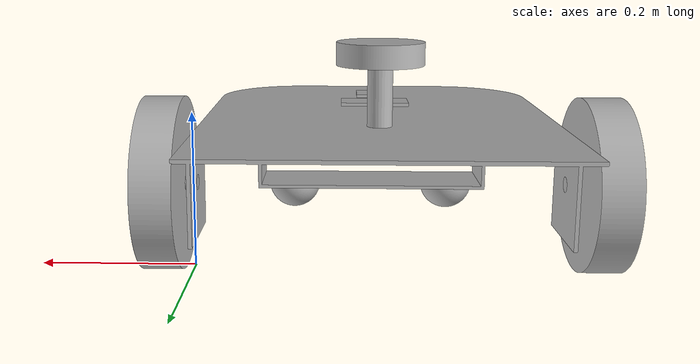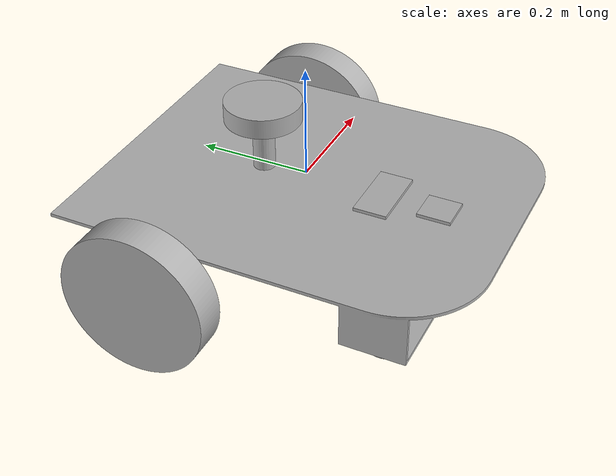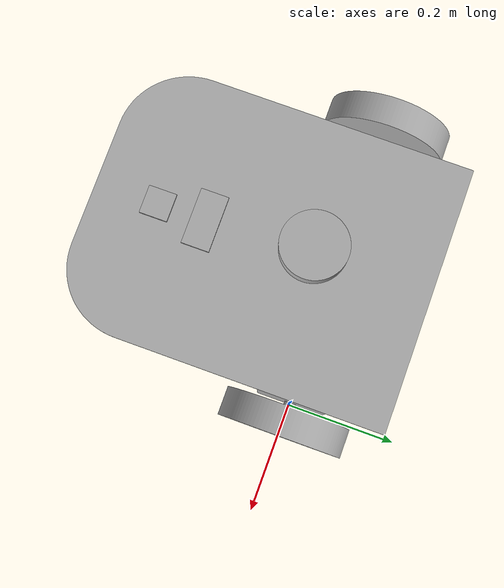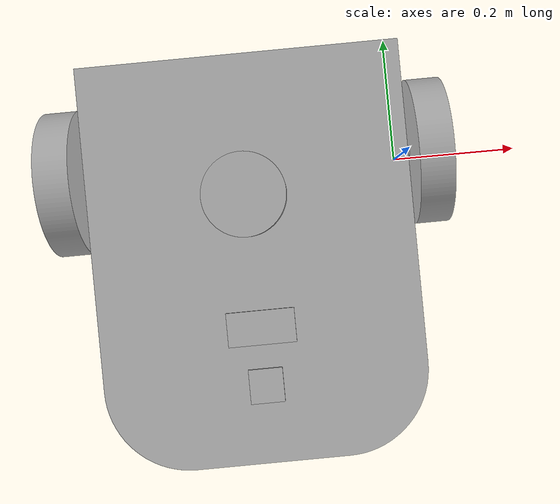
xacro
<?xml version="1.0" ?>
<robot name="eric_bot" xmlns:xacro="http://www.ros.org/wiki/xacro">

<xacro:include filename="$(find eric_bot_description)/urdf/materials.xacro" />
<xacro:include filename="$(find eric_bot_description)/urdf/eric_bot.trans" />
<xacro:include filename="$(find eric_bot_description)/urdf/eric_bot.gazebo" />
<link name="base_link">
  <inertial>
    <origin xyz="-0.23713528803949824 -0.13426975337040928 0.15351805277851321" rpy="0 0 0"/>
    <mass value="5.5523268218185935"/>
    <inertia ixx="0.159006" iyy="0.128806" izz="0.266255" ixy="0.000336" iyz="-0.010472" ixz="0.00017"/>
  </inertial>
  <visual>
    <origin xyz="0 0 0" rpy="0 0 0"/>
    <geometry>
      <mesh filename="file://$(find eric_bot_description)/meshes/base_link.stl" scale="0.001 0.001 0.001"/>
    </geometry>
    <material name="silver"/>
  </visual>
  <collision>
    <origin xyz="0 0 0" rpy="0 0 0"/>
    <geometry>
      <mesh filename="file://$(find eric_bot_description)/meshes/base_link.stl" scale="0.001 0.001 0.001"/>
    </geometry>
  </collision>
</link>

<link name="lidar_1">
  <inertial>
    <origin xyz="0.0 -3.045630598899618e-07 0.015000000000000013" rpy="0 0 0"/>
    <mass value="0.39442724222286785"/>
    <inertia ixx="0.000349" iyy="0.000349" izz="0.00064" ixy="0.0" iyz="-0.0" ixz="-0.0"/>
  </inertial>
  <visual>
    <origin xyz="0.2375 0.049335 -0.255" rpy="0 0 0"/>
    <geometry>
      <mesh filename="file://$(find eric_bot_description)/meshes/lidar_1.stl" scale="0.001 0.001 0.001"/>
    </geometry>
    <material name="silver"/>
  </visual>
  <collision>
    <origin xyz="0.2375 0.049335 -0.255" rpy="0 0 0"/>
    <geometry>
      <mesh filename="file://$(find eric_bot_description)/meshes/lidar_1.stl" scale="0.001 0.001 0.001"/>
    </geometry>
  </collision>
</link>

<link name="gps_1">
  <inertial>
    <origin xyz="-4.996003610813204e-16 -0.19000030456305989 0.002499999999999891" rpy="0 0 0"/>
    <mass value="0.03225"/>
    <inertia ixx="7e-06" iyy="2.7e-05" izz="3.4e-05" ixy="0.0" iyz="0.0" ixz="0.0"/>
  </inertial>
  <visual>
    <origin xyz="0.2375 0.049335 -0.175" rpy="0 0 0"/>
    <geometry>
      <mesh filename="file://$(find eric_bot_description)/meshes/gps_1.stl" scale="0.001 0.001 0.001"/>
    </geometry>
    <material name="silver"/>
  </visual>
  <collision>
    <origin xyz="0.2375 0.049335 -0.175" rpy="0 0 0"/>
    <geometry>
      <mesh filename="file://$(find eric_bot_description)/meshes/gps_1.stl" scale="0.001 0.001 0.001"/>
    </geometry>
  </collision>
</link>

<link name="imu_1">
  <inertial>
    <origin xyz="-2.498001805406602e-16 -0.27500030456305935 0.0025000000000001132" rpy="0 0 0"/>
    <mass value="0.016125"/>
    <inertia ixx="3e-06" iyy="3e-06" izz="7e-06" ixy="0.0" iyz="-0.0" ixz="-0.0"/>
  </inertial>
  <visual>
    <origin xyz="0.2375 0.049335 -0.175" rpy="0 0 0"/>
    <geometry>
      <mesh filename="file://$(find eric_bot_description)/meshes/imu_1.stl" scale="0.001 0.001 0.001"/>
    </geometry>
    <material name="silver"/>
  </visual>
  <collision>
    <origin xyz="0.2375 0.049335 -0.175" rpy="0 0 0"/>
    <geometry>
      <mesh filename="file://$(find eric_bot_description)/meshes/imu_1.stl" scale="0.001 0.001 0.001"/>
    </geometry>
  </collision>
</link>

<link name="right_caster_1">
  <inertial>
    <origin xyz="0.1199999999999996 0.0 -0.015000000000000041" rpy="0 0 0"/>
    <mass value="1.1380105228363668"/>
    <inertia ixx="0.000472" iyy="0.000472" izz="0.000728" ixy="0.0" iyz="0.0" ixz="0.0"/>
  </inertial>
  <visual>
    <origin xyz="0.235 0.3 -0.04" rpy="0 0 0"/>
    <geometry>
      <mesh filename="file://$(find eric_bot_description)/meshes/right_caster_1.stl" scale="0.001 0.001 0.001"/>
    </geometry>
    <material name="silver"/>
  </visual>
  <collision>
    <origin xyz="0.235 0.3 -0.04" rpy="0 0 0"/>
    <geometry>
      <mesh filename="file://$(find eric_bot_description)/meshes/right_caster_1.stl" scale="0.001 0.001 0.001"/>
    </geometry>
  </collision>
</link>

<link name="left_caster_1">
  <inertial>
    <origin xyz="-0.12 0.0 -0.014999999999999989" rpy="0 0 0"/>
    <mass value="1.1380105228363662"/>
    <inertia ixx="0.000472" iyy="0.000472" izz="0.000728" ixy="-0.0" iyz="-0.0" ixz="-0.0"/>
  </inertial>
  <visual>
    <origin xyz="0.235 0.3 -0.04" rpy="0 0 0"/>
    <geometry>
      <mesh filename="file://$(find eric_bot_description)/meshes/left_caster_1.stl" scale="0.001 0.001 0.001"/>
    </geometry>
    <material name="silver"/>
  </visual>
  <collision>
    <origin xyz="0.235 0.3 -0.04" rpy="0 0 0"/>
    <geometry>
      <mesh filename="file://$(find eric_bot_description)/meshes/left_caster_1.stl" scale="0.001 0.001 0.001"/>
    </geometry>
  </collision>
</link>

<link name="left_wheel_1">
  <inertial>
    <origin xyz="0.03991962077493816 -2.6157730081342715e-15 0.0" rpy="0 0 0"/>
    <mass value="1.771999628294055"/>
    <inertia ixx="0.010694" iyy="0.00572" izz="0.00572" ixy="-0.0" iyz="-0.0" ixz="0.0"/>
  </inertial>
  <visual>
    <origin xyz="0.005 -0.0 -0.11" rpy="0 0 0"/>
    <geometry>
      <mesh filename="file://$(find eric_bot_description)/meshes/left_wheel_1.stl" scale="0.001 0.001 0.001"/>
    </geometry>
    <material name="silver"/>
  </visual>
  <collision>
    <origin xyz="0.005 -0.0 -0.11" rpy="0 0 0"/>
    <geometry>
      <mesh filename="file://$(find eric_bot_description)/meshes/left_wheel_1.stl" scale="0.001 0.001 0.001"/>
    </geometry>
  </collision>
</link>

<link name="right_wheel_1">
  <inertial>
    <origin xyz="-0.03991962077493816 -8.630141603479498e-15 -1.3877787807814457e-17" rpy="0 0 0"/>
    <mass value="1.7719996282940542"/>
    <inertia ixx="0.010694" iyy="0.00572" izz="0.00572" ixy="0.0" iyz="-0.0" ixz="0.0"/>
  </inertial>
  <visual>
    <origin xyz="0.47 -0.0 -0.11" rpy="0 0 0"/>
    <geometry>
      <mesh filename="file://$(find eric_bot_description)/meshes/right_wheel_1.stl" scale="0.001 0.001 0.001"/>
    </geometry>
    <material name="silver"/>
  </visual>
  <collision>
    <origin xyz="0.47 -0.0 -0.11" rpy="0 0 0"/>
    <geometry>
      <mesh filename="file://$(find eric_bot_description)/meshes/right_wheel_1.stl" scale="0.001 0.001 0.001"/>
    </geometry>
  </collision>
</link>

<joint name="lidar_link" type="fixed">
  <origin xyz="-0.2375 -0.049335 0.255" rpy="0 0 0"/>
  <parent link="base_link"/>
  <child link="lidar_1"/>
</joint>

<joint name="gps_link" type="fixed">
  <origin xyz="-0.2375 -0.049335 0.175" rpy="0 0 0"/>
  <parent link="base_link"/>
  <child link="gps_1"/>
</joint>

<joint name="imu_link" type="fixed">
  <origin xyz="-0.2375 -0.049335 0.175" rpy="0 0 0"/>
  <parent link="base_link"/>
  <child link="imu_1"/>
</joint>

<joint name="caster_link_1" type="fixed">
  <origin xyz="-0.235 -0.3 0.04" rpy="0 0 0"/>
  <parent link="base_link"/>
  <child link="right_caster_1"/>
</joint>

<joint name="caster_link_2" type="fixed">
  <origin xyz="-0.235 -0.3 0.04" rpy="0 0 0"/>
  <parent link="base_link"/>
  <child link="left_caster_1"/>
</joint>

<joint name="left_wheel_joint" type="continuous">
  <origin xyz="-0.005 0.0 0.11" rpy="0 0 0"/>
  <parent link="base_link"/>
  <child link="left_wheel_1"/>
  <axis xyz="-1.0 0.0 0.0"/>
</joint>

<joint name="right_wheel_joint" type="continuous">
  <origin xyz="-0.47 0.0 0.11" rpy="0 0 0"/>
  <parent link="base_link"/>
  <child link="right_wheel_1"/>
  <axis xyz="1.0 0.0 0.0"/>
</joint>

</robot>

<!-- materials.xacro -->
<robot name="eric_bot" xmlns:xacro="http://www.ros.org/wiki/xacro" >

<material name="silver">
  <color rgba="0.700 0.700 0.700 1.000"/>
</material>

</robot>

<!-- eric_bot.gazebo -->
<robot name="eric_bot" xmlns:xacro="http://www.ros.org/wiki/xacro" >

<xacro:property name="body_color" value="Gazebo/Silver" />

<gazebo>
  <plugin name="control" filename="libgazebo_ros_control.so"/>
</gazebo>
<gazebo reference="base_link">
  <material>${body_color}</material>
  <mu1>0.2</mu1>
  <mu2>0.2</mu2>
  <self_collide>true</self_collide>
  <gravity>true</gravity>
</gazebo>

<gazebo reference="lidar_1">
  <material>${body_color}</material>
  <mu1>0.2</mu1>
  <mu2>0.2</mu2>
  <self_collide>true</self_collide>
</gazebo>

<gazebo reference="gps_1">
  <material>${body_color}</material>
  <mu1>0.2</mu1>
  <mu2>0.2</mu2>
  <self_collide>true</self_collide>
</gazebo>

<gazebo reference="imu_1">
  <material>${body_color}</material>
  <mu1>0.2</mu1>
  <mu2>0.2</mu2>
  <self_collide>true</self_collide>
</gazebo>

<gazebo reference="right_caster_1">
  <material>${body_color}</material>
  <mu1>0.2</mu1>
  <mu2>0.2</mu2>
  <self_collide>true</self_collide>
</gazebo>

<gazebo reference="left_caster_1">
  <material>${body_color}</material>
  <mu1>0.2</mu1>
  <mu2>0.2</mu2>
  <self_collide>true</self_collide>
</gazebo>

<gazebo reference="left_wheel_1">
  <material>${body_color}</material>
  <mu1>0.2</mu1>
  <mu2>0.2</mu2>
  <self_collide>true</self_collide>
</gazebo>

<gazebo reference="right_wheel_1">
  <material>${body_color}</material>
  <mu1>0.2</mu1>
  <mu2>0.2</mu2>
  <self_collide>true</self_collide>
</gazebo>

</robot>
